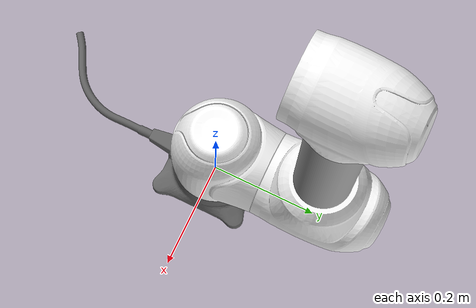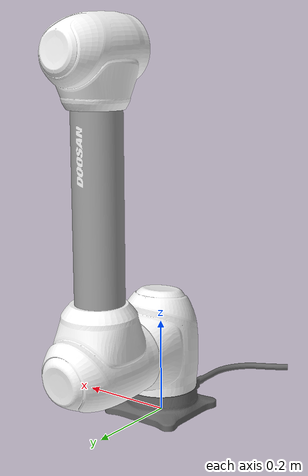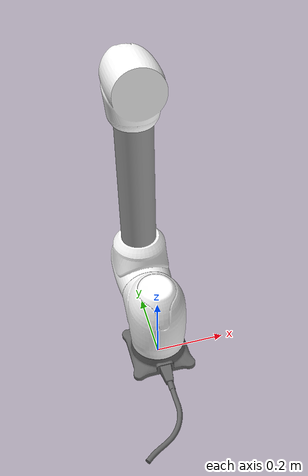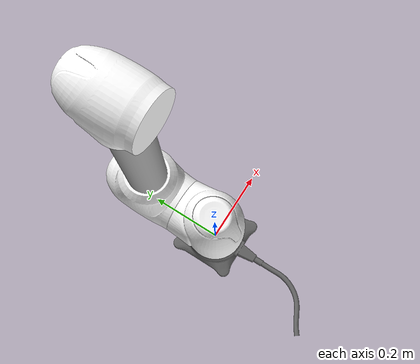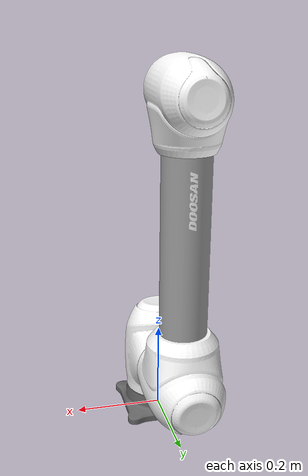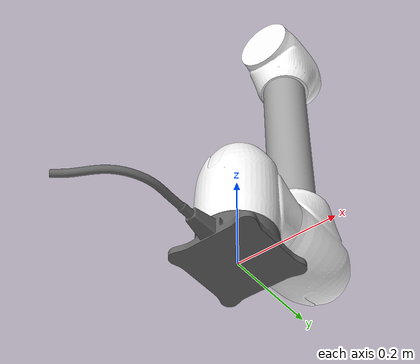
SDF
<?xml version="1.0" ?>
<sdf version="1.5">
  <model name="m1013">
    <pose>0.0 0.0 0.0 0.0 0.0 0.0</pose>

    <link name="base"/>

    <link name="base_0">
      <inertial>
        <inertia>
          <ixx>0.001</ixx>
          <ixy>0.000</ixy>
          <ixz>0.000</ixz>
          <iyy>0.001</iyy>
          <iyz>0.000</iyz>
          <izz>0.001</izz>
        </inertia>
        <mass>3.7</mass>
      </inertial>

      <visual name="base_0_visual">
          <geometry>
            <mesh>
              <uri>model://m1013/meshes/MF1013_0_0.dae</uri>
              <scale>0.001 0.001 0.001</scale>
            </mesh>
          </geometry>
      </visual>
    </link>

    <link name="link1">
      <inertial>
        <inertia>
          <ixx>0.001</ixx>
          <ixy>0.000</ixy>
          <ixz>0.000</ixz>
          <iyy>0.001</iyy>
          <iyz>0.000</iyz>
          <izz>0.001</izz>
        </inertia>
        <pose>7e-05 0.044281 0.143327 0 0 0</pose>
        <mass>3.7</mass>
      </inertial>

      <visual name="link1_visual">
        <pose>0 0 0.1525 0 0 0</pose>
        <geometry>
          <mesh>
            <uri>model://m1013/meshes/MF1013_1_0.dae</uri>
            <scale>0.001 0.001 0.001</scale>
          </mesh>
        </geometry>
      </visual>
    </link>

    <link name="link2">
      <inertial>
        <inertia>
          <ixx>0.001</ixx>
          <ixy>0.000</ixy>
          <ixz>0.000</ixz>
          <iyy>0.001</iyy>
          <iyz>0.000</iyz>
          <izz>0.001</izz>
        </inertia>
        <mass>3.7</mass>
      </inertial>

      <visual name="link2_0_visual">
      <pose>0 0.0345 0.1525 0 -1.571 -1.571</pose>
        <geometry>
          <mesh>
            <uri>model://m1013/meshes/MF1013_2_0.dae</uri>
            <scale>0.001 0.001 0.001</scale>
          </mesh>
        </geometry>
      </visual>
      <visual name="link2_1_visual">
      <pose>0 0.0345 0.1525 0 -1.571 -1.571</pose>
        <geometry>
          <mesh>
            <uri>model://m1013/meshes/MF1013_2_1.dae</uri>
            <scale>0.001 0.001 0.001</scale>
          </mesh>
        </geometry>
      </visual>
      <visual name="link2_2_visual">
      <pose>0 0.0345 0.1525 0 -1.571 -1.571</pose>
        <geometry>
          <mesh>
            <uri>model://m1013/meshes/MF1013_2_2.dae</uri>
            <scale>0.001 0.001 0.001</scale>
          </mesh>
        </geometry>
      </visual>
    </link>

    <joint name="fixed_base" type="fixed">
      <parent>world</parent>
      <child>base_0</child>
    </joint>

    <joint name="joint1" type="revolute">
      <parent>base_0</parent>
      <child>link1</child>
      <pose>0 0 0.1525 0 0 0</pose>
      <axis>
        <xyz>0 0 1</xyz>
      </axis>
    </joint>

    <joint name="joint2" type="revolute">
      <parent>link1</parent>
      <child>link2</child>
      <pose>0 0.0345 0 0 -1.571 -1.571</pose>
      <axis>
        <xyz>0 0 1</xyz>
      </axis>
    </joint>

  </model>
</sdf>
